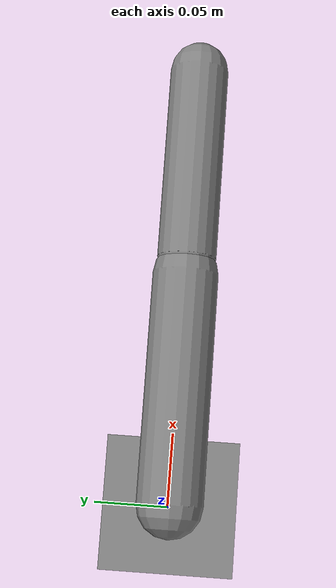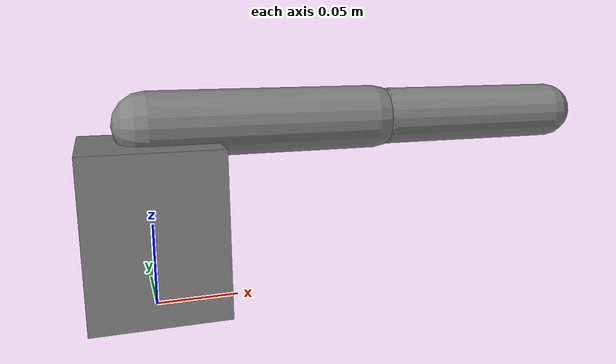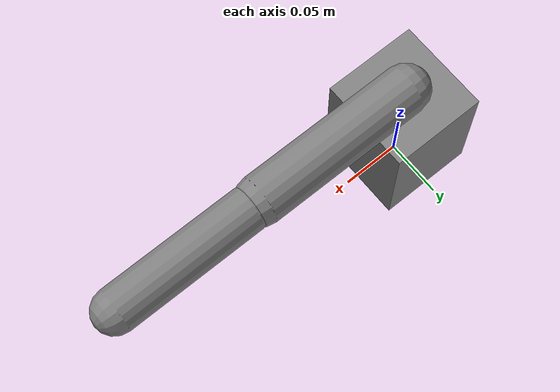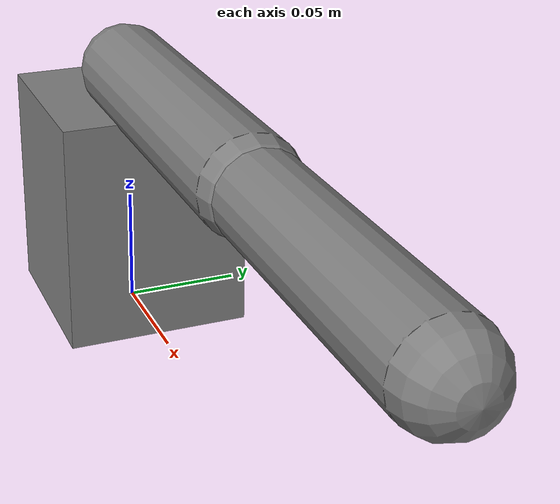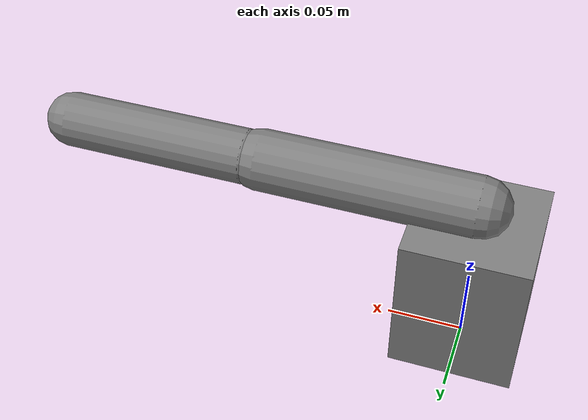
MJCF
<mujoco model="probe_arm">
  <compiler angle="radian"/>
  <option gravity="0 0 -9.81"/>
  <worldbody>
    <body name="base" pos="0 0 0.05">
      <geom type="box" size="0.04 0.04 0.05"/>
      <body name="link1" pos="0 0 0.06">
        <joint name="j1" type="hinge" axis="0 0 1" range="-2 2" limited="true" damping="0.4"/>
        <geom type="capsule" fromto="0 0 0 0.14 0 0" size="0.02"/>
        <body name="link2" pos="0.15 0 0">
          <joint name="j2" type="hinge" axis="0 1 0" range="-2 2" limited="true" damping="0.4"/>
          <geom type="capsule" fromto="0 0 0 0.12 0 0" size="0.018"/>
        </body>
      </body>
    </body>
  </worldbody>
  <actuator>
    <position name="a1" joint="j1" kp="30" ctrlrange="-2 2"/>
    <position name="a2" joint="j2" kp="30" ctrlrange="-2 2"/>
  </actuator>
</mujoco>
